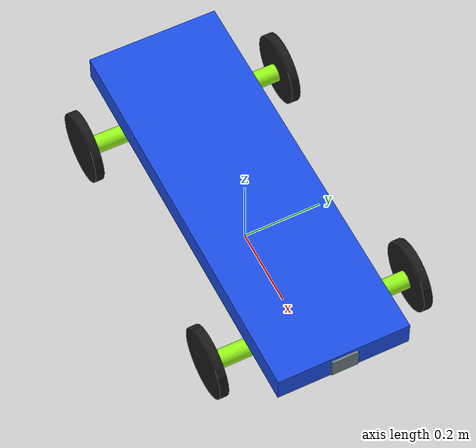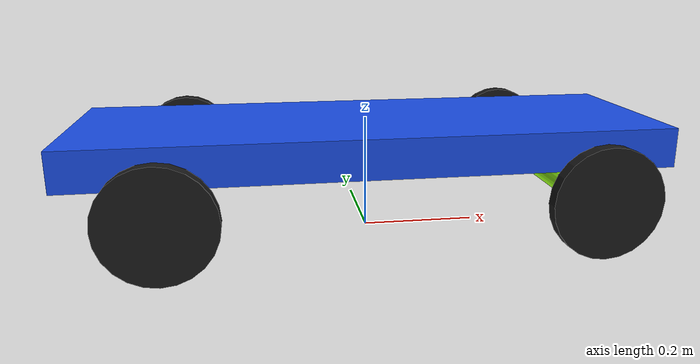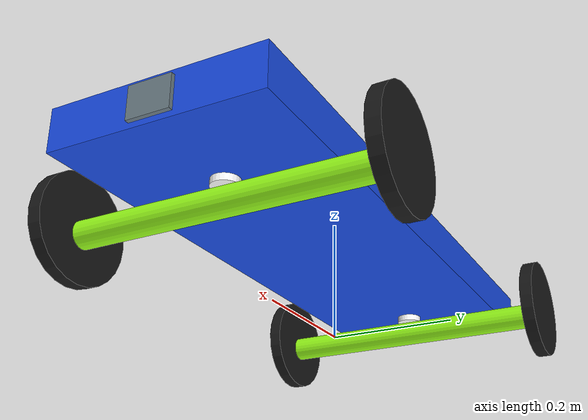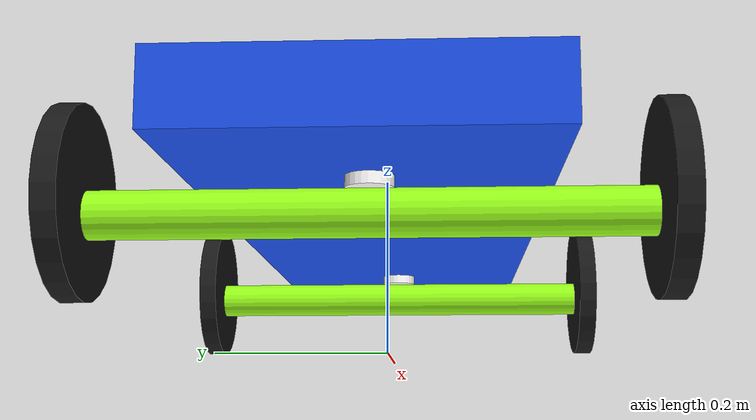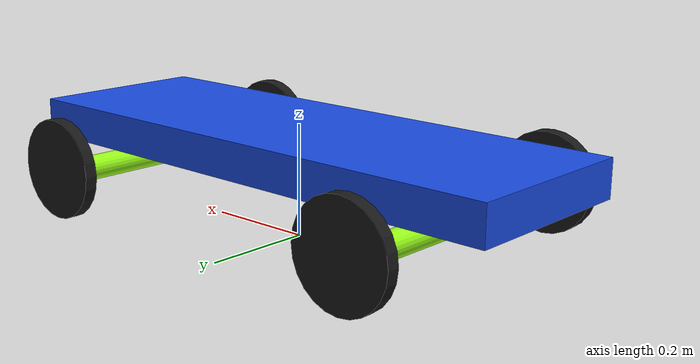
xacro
<?xml version="1.0"?>
<robot xmlns:xacro="http://www.ros.org/wiki/xacro" name="nacbot">

    <xacro:property name='base_length' value='1.0'/>
    <xacro:property name='base_width' value='${base_length/3.0}'/>
    <xacro:property name='base_height' value='${base_length/15.0}'/>
    <xacro:property name='base_mass' value='0.1'/>

    <xacro:property name='axle_length' value='${base_length/2.0}'/>
    <xacro:property name='axle_radius' value='${base_width/15.0}'/>
    <xacro:property name='axle_mass' value='${base_mass/5.0}'/>

    <xacro:property name='rotary_length' value='${axle_radius/2.0}'/>
    <xacro:property name='rotary_radius' value='${axle_radius}'/>
    <xacro:property name='rotary_mass' value='${base_mass/5.0}'/>

    <xacro:property name='wheel_length' value='${axle_radius}'/>
    <xacro:property name='wheel_radius' value='${axle_radius*4.0}'/>
    <xacro:property name='wheel_mass' value='${base_mass/10.0}'/>

    <xacro:property name='camera_mass' value='${base_mass/50.0}'/>

    <xacro:property name='correction' value='2.0'/>

    <material name="blue">  <color rgba="0.1 0.3 0.9 1.0"/> </material>   <!-- royal blue -->
    <material name="green"> <color rgba="0.6 1.0 0.1 1.0"/> </material>   <!-- lime / acid green -->
    <material name="white"> <color rgba="1.0 1.0 1.0 1.0"/> </material>   <!-- pure white -->
    <material name="black"> <color rgba="0.1 0.1 0.1 1.0"/> </material>   <!-- charcoal -->

    <xacro:include filename='intertial_macros.urdf.xacro'/>    <!-- intertial-marcos -->
    <xacro:include filename='body_macros.urdf.xacro'/>         <!-- body-marcos -->
    <xacro:include filename='nacbot.urdf.xacro'/>              <!-- nacbot-chassis -->
    <xacro:include filename='camera.urdf.xacro'/>              <!-- adding camera -->

    <xacro:include filename="gazebo_ros2_control.urdf.xacro" />

</robot>

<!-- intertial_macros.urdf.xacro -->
<robot xmlns:xacro="http://www.ros.org/wiki/xacro" name="macros">

    <!-- box intertia -->
    <xacro:macro name='box_inertia' params="m l w h xyz rpy">
        <inertial>
            <origin xyz='${xyz}' rpy='${rpy}'/>
            <mass value="${m}"/>
            <inertia ixx="${(m/12.0) * (h*h + l*l)}" ixy="0.0" ixz="0.0" iyy="${(m/12)*(w*w + h*h)}" iyz="0.0" izz="${(m/12)*(w*w + l*l)}"/>
        </inertial>
    </xacro:macro>

    <!-- cylinder inertia  -->
    <xacro:macro name='cylinder_inertia' params='m r h xyz rpy'>
        <inertial>
            <origin xyz="${xyz}" rpy="${rpy}"/>
            <mass value='${m}'/>
            <inertia ixx="${(m/12) * ((3*r*r)+(h*h))}" ixy="0.0" ixz="0.0" iyy="${(m/12) * ((3*r*r)+(h*h))}" iyz="0.0" izz="${(m/2)*r*r}"/>
        </inertial>
    </xacro:macro>

    <!-- for sphere -->
    <xacro:macro name='sphere_inertia' params='m r xyz rpy'>
        <inertial>
            <origin xyz="${xyz}" rpy="${rpy}"/>
            <mass value="${m}"/>
            <inertia ixx="${2*m*r*r/5}" ixy="0.0" ixz="0.0" iyy="${2*m*r*r/5}" iyz="0.0" izz="${2*m*r*r/5}"/>
        </inertial>
    </xacro:macro>

</robot>

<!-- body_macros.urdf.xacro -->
<robot xmlns:xacro="http://www.ros.org/wiki/xacro" name="body_macros">

                            <!-- cylinder -->

    <xacro:macro name='cylinder' params="n r l m c k xyz rpy">
        <link name="${n}">
            <visual>
                <origin xyz="${xyz}" rpy="${rpy}"/>
                <geometry> <cylinder radius="${r}" length="${l}"/> </geometry>
                <material name="${c}"/>
            </visual>
            <xacro:cylinder_inertia m='${m}' r='${k * r}' h='${k * l}' xyz="${xyz}" rpy="${rpy}" />
            <collision>
                <origin xyz="${xyz}" rpy="${rpy}"/>
                <geometry> <cylinder radius="${r}" length="${l}"/> </geometry>
            </collision>
        </link>
    </xacro:macro>

</robot>

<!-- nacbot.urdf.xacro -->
<robot xmlns:xacro="http://www.ros.org/wiki/xacro" name="nacbot_description">

    <link name="base_foot"></link>
    <link name="base_link">
        <visual>
            <origin xyz="0.0 0.0 0.0" rpy="0.0 0.0 0.0"/>
            <geometry> <box size="${base_length} ${base_width} ${base_height}"/> </geometry>
            <material name="blue"/>
        </visual>
        <xacro:box_inertia m='${base_mass}' l='${correction * base_length}' w='${correction * base_width}' h='${correction * base_height}' xyz="0.0 0.0 0.0" rpy="0.0 0.0 0.0"/>
        <collision>
            <origin xyz="0.0 0.0 ${wheel_radius*2.0}" rpy="0.0 0.0 0.0"/>
            <geometry> <box size="${base_length} ${base_width} ${base_height}"/> </geometry>
        </collision>
    </link>
    <joint name="base_foot_joint" type="fixed">
        <parent link="base_foot"/>
        <child link="base_link"/>
        <origin xyz="0.0 0.0 ${wheel_radius*2.0 - axle_radius + rotary_length}" rpy="0 0.0 0.0"/>
    </joint>

    <xacro:cylinder n="mid_front_rotary" m='${rotary_mass}' r='${rotary_radius}' l='${rotary_length}' c="white" k='${correction*3.0}' xyz="0.0 0.0 -${rotary_length/2.0}" rpy="0.0 0.0 0.0"/>
    <joint name="base_front_rotary_joint" type="fixed">
        <parent link="base_link"/>
        <child link="mid_front_rotary"/>
        <origin xyz="${base_length/3.0} 0.0 -${base_height/2.0}" rpy="0 0.0 0.0"/>
    </joint>

    <xacro:cylinder n="front_axle" m='${axle_mass}' r='${axle_radius}' l='${axle_length}' c="green" k='${correction}' xyz="0.0 0.0 -${rotary_length}" rpy="${pi/2.0} 0.0 0.0"/>
    <joint name="base_front_joint" type="fixed">
        <parent link="mid_front_rotary"/>
        <child link="front_axle"/>
        <origin xyz="0.0 0.0 -${axle_radius}" rpy="0 0.0 0.0"/>
    </joint>

    <xacro:cylinder n="front_right_wheel" m='${wheel_mass}' r='${wheel_radius}' l='${wheel_length}' c="black" k='${correction}' xyz="0.0 -${wheel_length/2.0} 0.0" rpy="${pi/2.0} 0.0 0.0"/>
    <joint name="front_axle_right_wheel_joint" type="continuous">
        <parent link="front_axle"/>
        <child link="front_right_wheel"/>
        <axis xyz="0.0 1.0 0.0"/>
        <origin xyz="0.0 -${axle_length/2.0} 0.0" rpy="0.0 0.0 0.0"/>
    </joint>

    <xacro:cylinder n="front_left_wheel" m='${wheel_mass}' r='${wheel_radius}' l='${wheel_length}' c="black" k='${correction}' xyz="0.0 ${wheel_length/2.0} 0.0" rpy="${pi/2.0} 0.0 0.0"/>
    <joint name="front_axle_left_wheel_joint" type="continuous">
        <parent link="front_axle"/>
        <child link="front_left_wheel"/>
        <axis xyz="0.0 1.0 0.0"/>
        <origin xyz="0.0 ${axle_length/2.0} 0.0" rpy="0.0 0.0 0.0"/>
    </joint>

    <xacro:cylinder n="mid_back_rotary" m='${rotary_mass}' r='${rotary_radius}' l='${rotary_length}' c="white" k='${correction}' xyz="0.0 0.0 -${rotary_length/2.0}" rpy="0.0 0.0 0.0"/>
    <joint name="base_back_rotary_joint" type="fixed">
        <parent link="base_link"/>
        <child link="mid_back_rotary"/>
        <origin xyz="-${base_length/3.0} 0.0 -${base_height/2.0}" rpy="0 0.0 0.0"/>
    </joint>

    <xacro:cylinder n="back_axle" m='${axle_mass}' r='${axle_radius}' l='${axle_length}' c="green" k='${correction}' xyz="0.0 0.0 -${rotary_length}" rpy="${pi/2.0} 0.0 0.0"/>
    <joint name="base_back_joint" type="fixed">
        <parent link="mid_back_rotary"/>
        <child link="back_axle"/>
        <origin xyz="0.0 0.0 -${axle_radius}" rpy="0 0.0 0.0"/>
    </joint>

    <xacro:cylinder n="back_right_wheel" m='${wheel_mass}' r='${wheel_radius}' l='${wheel_length}' c="black" k='${correction}' xyz="0.0 -${wheel_length/2.0} 0.0" rpy="${pi/2.0} 0.0 0.0"/>
    <joint name="back_axle_right_wheel_joint" type="continuous">
        <parent link="back_axle"/>
        <child link="back_right_wheel"/>
        <axis xyz="0.0 1.0 0.0"/>
        <origin xyz="0.0 -${axle_length/2.0} 0.0" rpy="0.0 0.0 0.0"/>
    </joint>

    <xacro:cylinder n="back_left_wheel" m='${wheel_mass}' r='${wheel_radius}' l='${wheel_length}' c="black" k='${correction}' xyz="0.0 ${wheel_length/2.0} 0.0" rpy="${pi/2.0} 0.0 0.0"/>
    <joint name="back_axle_left_wheel_joint" type="continuous">
        <parent link="back_axle"/>
        <child link="back_left_wheel"/>
        <axis xyz="0.0 1.0 0.0"/>
        <origin xyz="0.0 ${axle_length/2.0} 0.0" rpy="0.0 0.0 0.0"/>
    </joint>

</robot>

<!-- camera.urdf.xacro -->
<robot xmlns:xacro="http://www.ros.org/wiki/xacro" name="camera">

    <xacro:property name='camera_length' value='${base_length/20}'/>
    <xacro:property name='camera_width' value='${base_width/5.0}'/>
    <xacro:property name='camera_height' value='${base_height/10.0}'/>

    <material name='camera_color'><color rgba="0.4196078431372549 0.48627450980392156 0.5215686274509804 1.0"/></material>

    <link name="camera_link">
        <visual>
            <origin xyz="0.0 0.0 0.0" rpy="0.0 ${-pi/2} 0.0"/>
            <geometry> <box size="${camera_length} ${camera_width} ${camera_height}"/> </geometry>
            <material name="camera_color"/>
            <xacro:box_inertia m='${camera_mass}' l='${correction * camera_length}' w='${correction * camera_width}' h='${correction * camera_height}' xyz="0.0 0.0 0.0" rpy="0.0 ${-pi/2} 0.0"/>
            <collision>
                <origin xyz="0.0 0.0 0.0" rpy="0.0 ${-pi/2} 0.0"/>
                <geometry> <box size="${camera_length} ${camera_width} ${camera_height}"/> </geometry>
            </collision>
        </visual>
    </link>
    <joint name="base_camera" type="fixed">
        <parent link="base_link"/>
        <child link="camera_link"/>
        <origin xyz="${base_length/2.0 + camera_height/2.0} 0.0 0.0" rpy="0 0.0 0.0"/>
    </joint>

    <!-- This is a fix for opencv -->
    <link name="camera_link_optical"></link>
    <joint name="camera_optical_joint" type="fixed">
        <origin xyz="0 0 0" rpy="${-pi/2} 0 ${-pi/2}"/>
        <parent link="camera_link"/>
        <child link="camera_link_optical"/>
      </joint>

                            <!-- adding sensor -->
    <gazebo reference='camera_link'>
        <material>Gazebo/Red</material>
        <sensor name="camera_sensor" type="camera" update_rate="10.0">
            <parent link="camera_link"/>
            <origin xyz="0.0 0.0 0.0" rpy="0.0 0.0 0.0"/>
            <visualize>true</visualize>

            <camera>
            <horizontal_fov>1.047</horizontal_fov>
            <image>
                <width>320</width>
                <height>240</height>
                <format>R8G8B8</format>
            </image>
            <clip>
                <near>0.1</near>
                <far>100</far>
            </clip>
            </camera>

            <plugin name="camera_driver" filename="libgazebo_ros_camera.so">
                <frame_name>camera_link_optical</frame_name>
            </plugin>
        </sensor>
    </gazebo>

</robot>
